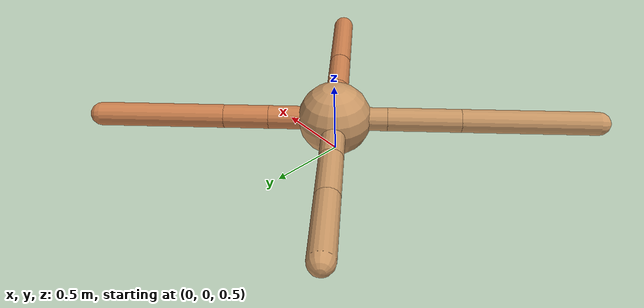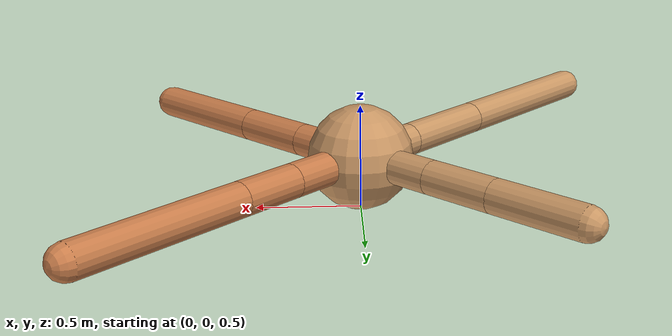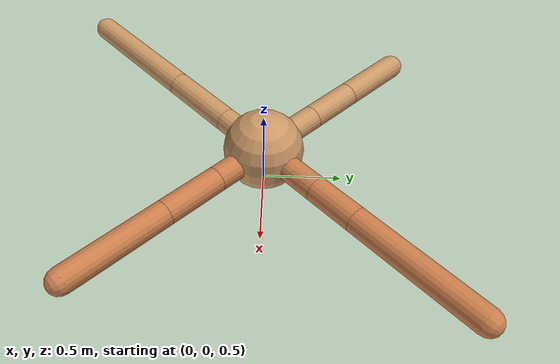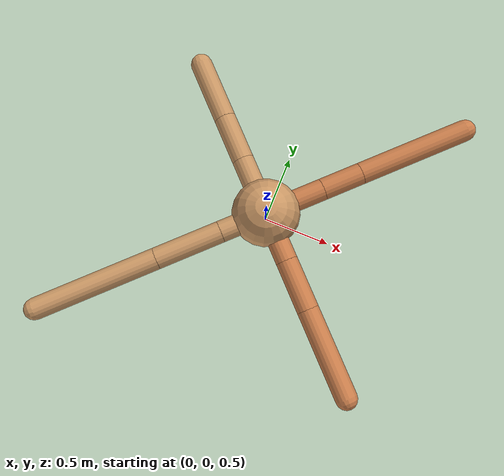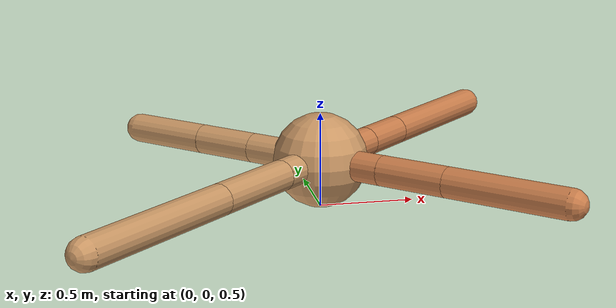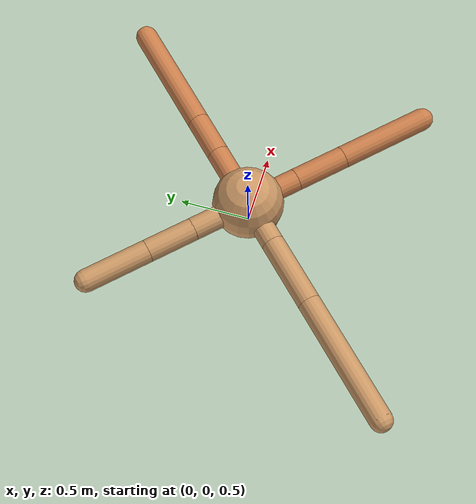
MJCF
<mujoco model="ant">
  <compiler angle="degree" coordinate="local" inertiafromgeom="true" />
  <option integrator="RK4" timestep="0.01" />
  <custom>
    <numeric data="0.0 0.0 0.55 1.0 0.0 0.0 0.0 0.0 1.0 0.0 -1.0 0.0 -1.0 0.0 1.0" name="init_qpos" />
  </custom>
  <default>
    <joint armature="1" damping="1" limited="true" />
    <geom conaffinity="0" condim="3" density="5.0" friction="1.5 0.1 0.1" margin="0.01" rgba="0.8 0.6 0.4 1" />
  </default>
  <worldbody>
    <body name="torso" pos="0 0 0.75">
      <geom name="torso_geom" pos="0 0 0" size="0.25" type="sphere" />

      <body name="front_left_leg" pos="0 0 0">
        <geom fromto="0.0 0.0 0.0 0.31657037002907523 0.31657037002907523 0.0" name="aux_1_geom" size="0.08" type="capsule" rgba=".8 .5 .3 1" />
        <body name="aux_1" pos="0.31657037002907523 0.31657037002907523 0.0">
          <joint axis="0 0 1" name="hip_1" pos="0.0 0.0 0.0" range="-40 40" type="hinge" />
          <geom fromto="0.0 0.0 0.0 0.2147494906412118 0.2147494906412118 0.0" name="left_leg_geom" size="0.08" type="capsule" rgba=".8 .5 .3 1" />
          <body pos="0.2147494906412118 0.2147494906412118 0.0" name="front_left_foot">
            <joint axis="-1 1 0" name="ankle_1" pos="0.0 0.0 0.0" range="30 100" type="hinge" />
            <geom fromto="0.0 0.0 0.0 0.5981776663445938 0.5981776663445938 0.0" name="left_ankle_geom" size="0.08" type="capsule" rgba=".8 .5 .3 1" />
          </body>
        </body>
      </body>
      <body name="front_right_leg" pos="0 0 0">
        <geom fromto="0.0 0.0 0.0 -0.30402518893415587 0.30402518893415587 0.0" name="aux_2_geom" size="0.08" type="capsule" />
        <body name="aux_2" pos="-0.30402518893415587 0.30402518893415587 0.0">
          <joint axis="0 0 1" name="hip_2" pos="0.0 0.0 0.0" range="-40 40" type="hinge" />
          <geom fromto="0.0 0.0 0.0 -0.24464575188894255 0.24464575188894255 0.0" name="right_leg_geom" size="0.08" type="capsule" />
          <body pos="-0.24464575188894255 0.24464575188894255 0.0" name="front_right_foot">
            <joint axis="1 1 0" name="ankle_2" pos="0.0 0.0 0.0" range="-100 -30" type="hinge" />
            <geom fromto="0.0 0.0 0.0 -0.3251326742494496 0.3251326742494496 0.0" name="right_ankle_geom" size="0.08" type="capsule" />
          </body>
        </body>
      </body>
      <body name="left_back_leg" pos="0 0 0">
        <geom fromto="0.0 0.0 0.0 -0.2508980543454539 -0.2508980543454539 0.0" name="aux_3_geom" size="0.08" type="capsule" />
        <body name="aux_3" pos="-0.2508980543454539 -0.2508980543454539 0.0">
          <joint axis="0 0 1" name="hip_3" pos="0.0 0.0 0.0" range="-40 40" type="hinge" />
          <geom fromto="0.0 0.0 0.0 -0.35197468825369693 -0.35197468825369693 0.0" name="back_leg_geom" size="0.08" type="capsule" />
          <body pos="-0.35197468825369693 -0.35197468825369693 0.0" name="left_back_foot">
            <joint axis="-1 1 0" name="ankle_3" pos="0.0 0.0 0.0" range="-100 -30" type="hinge" />
            <geom fromto="0.0 0.0 0.0 -0.6502659294670435 -0.6502659294670435 0.0" name="third_ankle_geom" size="0.08" type="capsule" />
          </body>
        </body>
      </body>
      <body name="right_back_leg" pos="0 0 0">
        <geom fromto="0.0 0.0 0.0 0.26800600194915036 -0.26800600194915036 0.0" name="aux_4_geom" size="0.08" type="capsule" rgba=".8 .5 .3 1" />
        <body name="aux_4" pos="0.26800600194915036 -0.26800600194915036 0.0">
          <joint axis="0 0 1" name="hip_4" pos="0.0 0.0 0.0" range="-40 40" type="hinge" />
          <geom fromto="0.0 0.0 0.0 0.2664345298872236 -0.2664345298872236 0.0" name="rightback_leg_geom" size="0.08" type="capsule" rgba=".8 .5 .3 1" />
          <body pos="0.2664345298872236 -0.2664345298872236 0.0" name="right_back_foot">
            <joint axis="1 1 0" name="ankle_4" pos="0.0 0.0 0.0" range="30 100" type="hinge" />
            <geom fromto="0.0 0.0 0.0 0.46886670990632395 -0.46886670990632395 0.0" name="fourth_ankle_geom" size="0.08" type="capsule" rgba=".8 .5 .3 1" />
          </body>
        </body>
      </body>
    </body>
  </worldbody>
  <actuator>
    <motor ctrllimited="true" ctrlrange="-1.0 1.0" joint="hip_4" gear="150" />
    <motor ctrllimited="true" ctrlrange="-1.0 1.0" joint="ankle_4" gear="150" />
    <motor ctrllimited="true" ctrlrange="-1.0 1.0" joint="hip_1" gear="150" />
    <motor ctrllimited="true" ctrlrange="-1.0 1.0" joint="ankle_1" gear="150" />
    <motor ctrllimited="true" ctrlrange="-1.0 1.0" joint="hip_2" gear="150" />
    <motor ctrllimited="true" ctrlrange="-1.0 1.0" joint="ankle_2" gear="150" />
    <motor ctrllimited="true" ctrlrange="-1.0 1.0" joint="hip_3" gear="150" />
    <motor ctrllimited="true" ctrlrange="-1.0 1.0" joint="ankle_3" gear="150" />
  </actuator>
</mujoco>
